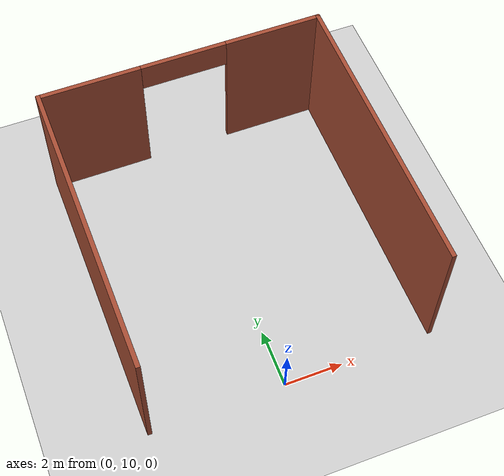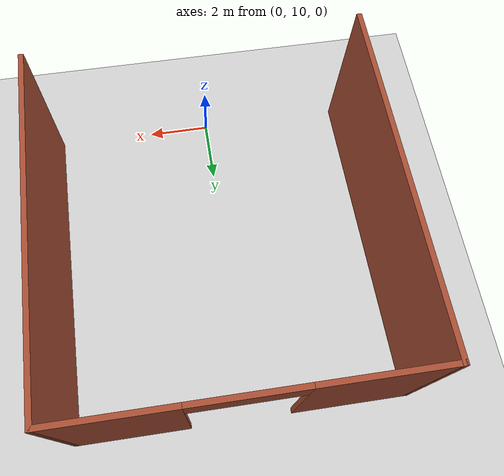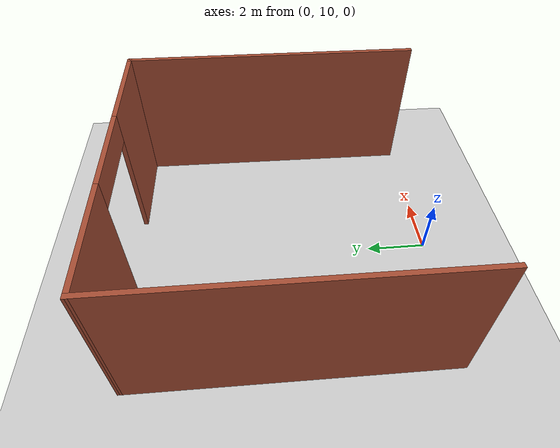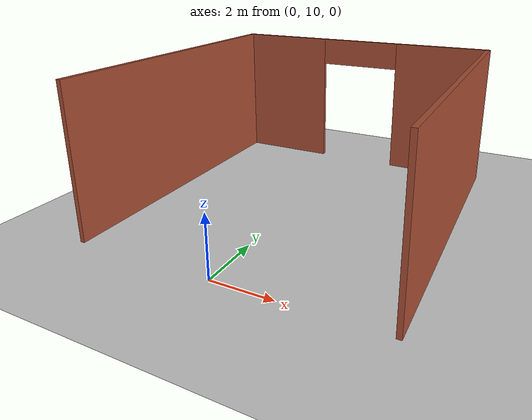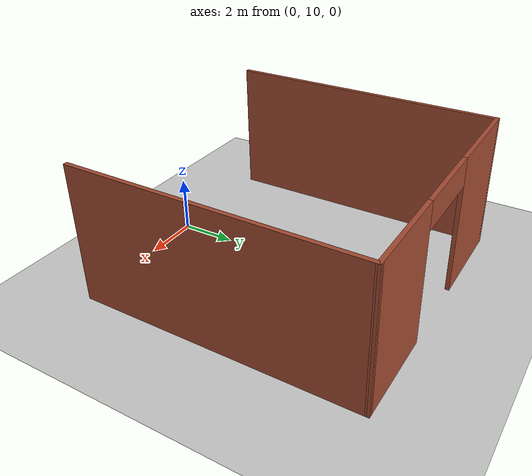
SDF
<sdf version="1.6">
 <world name="default">
  <model name="ground_plane">
   <static>1</static>
   <link name="link">
    <collision name="collision">
     <geometry><plane><normal>0 0 1</normal><size>100 100</size></plane></geometry>
     <surface><friction><ode><mu>100</mu><mu2>50</mu2></ode></friction></surface>
    </collision>
    <visual name="visual">
     <cast_shadows>0</cast_shadows>
     <geometry><plane><normal>0 0 1</normal><size>100 100</size></plane></geometry>
     <material>
      <script><uri>file://media/materials/scripts/gazebo.material</uri><name>Gazebo/Grey</name></script>
     </material>
    </visual>
   </link>
  </model>
  <model name="world3_p3_0">
   <pose>0.255822 15.1032 0 0 -0 0</pose>
   <link name="Wall_0">
    <pose>0.000122 5.06704 0 0 -0 0.003046</pose>
    <visual name="Wall_0_Visual_0">
     <pose>-3.21998 0 2.5 0 -0 0</pose>
     <geometry><box><size>3.56005 0.15 5</size></box></geometry>
     <material>
      <script><uri>file://media/materials/scripts/gazebo.material</uri><name>Gazebo/Bricks</name></script>
      <ambient>1 1 1 1</ambient>
     </material>
     <meta><layer>0</layer></meta>
    </visual>
    <collision name="Wall_0_Collision_0">
     <geometry><box><size>3.56005 0.15 5</size></box></geometry>
     <pose>-3.21998 0 2.5 0 -0 0</pose>
    </collision>
    <visual name="Wall_0_Visual_1">
     <pose>3.28002 0 2.5 0 -0 0</pose>
     <geometry><box><size>3.43995 0.15 5</size></box></geometry>
     <material>
      <script><uri>file://media/materials/scripts/gazebo.material</uri><name>Gazebo/Bricks</name></script>
      <ambient>1 1 1 1</ambient>
     </material>
     <meta><layer>0</layer></meta>
    </visual>
    <collision name="Wall_0_Collision_1">
     <geometry><box><size>3.43995 0.15 5</size></box></geometry>
     <pose>3.28002 0 2.5 0 -0 0</pose>
    </collision>
    <visual name="Wall_0_Visual_2">
     <pose>0.060047 0 4.5 0 -0 0</pose>
     <geometry><box><size>3 0.15 1</size></box></geometry>
     <material>
      <script><uri>file://media/materials/scripts/gazebo.material</uri><name>Gazebo/Bricks</name></script>
      <ambient>1 1 1 1</ambient>
     </material>
     <meta><layer>0</layer></meta>
    </visual>
    <collision name="Wall_0_Collision_2">
     <geometry><box><size>3 0.15 1</size></box></geometry>
     <pose>0.060047 0 4.5 0 -0 0</pose>
    </collision>
   </link>
   <link name="Wall_2">
    <collision name="Wall_2_Collision">
     <geometry><box><size>10.2839 0.15 5</size></box></geometry>
     <pose>0 0 2.5 0 -0 0</pose>
    </collision>
    <visual name="Wall_2_Visual">
     <pose>0 0 2.5 0 -0 0</pose>
     <geometry><box><size>10.2839 0.15 5</size></box></geometry>
     <material>
      <script><uri>file://media/materials/scripts/gazebo.material</uri><name>Gazebo/Bricks</name></script>
      <ambient>1 1 1 1</ambient>
     </material>
     <meta><layer>0</layer></meta>
    </visual>
    <pose>-4.89438 -0.014961 0 0 -0 -1.56478</pose>
   </link>
   <link name="Wall_4">
    <collision name="Wall_4_Collision">
     <geometry><box><size>10.25 0.15 5</size></box></geometry>
     <pose>0 0 2.5 0 -0 0</pose>
    </collision>
    <visual name="Wall_4_Visual">
     <pose>0 0 2.5 0 -0 0</pose>
     <geometry><box><size>10.25 0.15 5</size></box></geometry>
     <material>
      <script><uri>file://media/materials/scripts/gazebo.material</uri><name>Gazebo/Bricks</name></script>
      <ambient>1 1 1 1</ambient>
     </material>
     <meta><layer>0</layer></meta>
    </visual>
    <pose>4.92512 0.032039 0 0 -0 -1.5708</pose>
   </link>
   <static>1</static>
  </model>
 </world>
</sdf>
